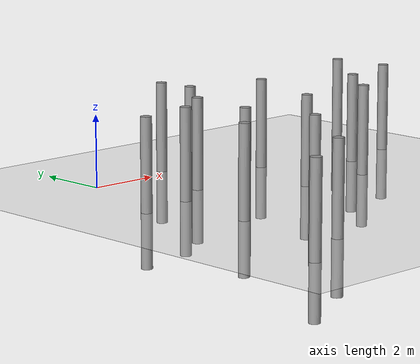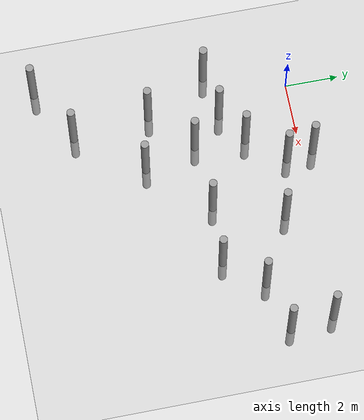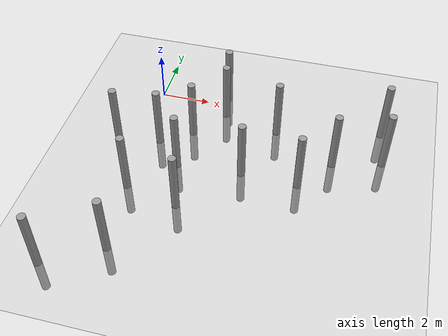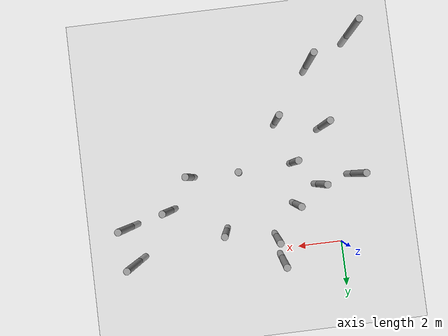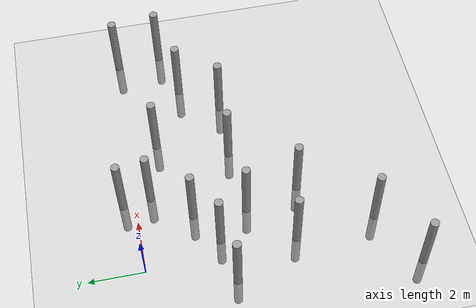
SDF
<sdf version="1.6">
 <world name="default">
  <model name="ground_plane">
   <static>1</static>
   <link name="link">
    <collision name="collision">
     <geometry><plane><normal>0 0 1</normal><size>100 100</size></plane></geometry>
     <surface><friction><ode><mu>100</mu><mu2>50</mu2></ode></friction></surface>
    </collision>
    <visual name="visual">
     <cast_shadows>0</cast_shadows>
     <geometry><plane><normal>0 0 1</normal><size>100 100</size></plane></geometry>
     <material>
      <script><uri>file://media/materials/scripts/gazebo.material</uri><name>Gazebo/Grey</name></script>
     </material>
    </visual>
   </link>
  </model>
  <model name="unit_cylinder_clone">
   <link name="link">
    <inertial>
     <mass>1000</mass>
     <inertia><ixx>145.833</ixx><ixy>0</ixy><ixz>0</ixz><iyy>145.833</iyy><iyz>0</iyz><izz>125</izz></inertia>
    </inertial>
    <visual name="visual">
     <geometry><cylinder><radius>0.15</radius><length>4</length></cylinder></geometry>
     <material>
      <script><name>Gazebo/Grey</name><uri>file://media/materials/scripts/gazebo.material</uri></script>
      <shader type="pixel"><normal_map>__default__</normal_map></shader>
      <ambient>0.3 0.3 0.3 1</ambient>
      <diffuse>0.7 0.7 0.7 1</diffuse>
      <specular>0.01 0.01 0.01 1</specular>
      <emissive>0 0 0 1</emissive>
     </material>
    </visual>
    <collision name="collision">
     <geometry><cylinder><radius>0.15</radius><length>4</length></cylinder></geometry>
     <surface>
      <friction>
       <ode><mu>1</mu><mu2>1</mu2><fdir1>0 0 0</fdir1><slip1>0</slip1><slip2>0</slip2></ode>
       <torsional>
        <coefficient>1</coefficient>
        <patch_radius>0</patch_radius>
        <surface_radius>0</surface_radius>
        <use_patch_radius>1</use_patch_radius>
        <ode><slip>0</slip></ode>
       </torsional>
      </friction>
      <bounce><restitution_coefficient>0</restitution_coefficient><threshold>1e+06</threshold></bounce>
      <contact>
       <collide_without_contact>0</collide_without_contact>
       <collide_without_contact_bitmask>1</collide_without_contact_bitmask>
       <collide_bitmask>1</collide_bitmask>
       <ode>
        <soft_cfm>0</soft_cfm>
        <soft_erp>0.2</soft_erp>
        <kp>1e+13</kp>
        <kd>1</kd>
        <max_vel>0.01</max_vel>
        <min_depth>0</min_depth>
       </ode>
       <bullet>
        <split_impulse>1</split_impulse>
        <split_impulse_penetration_threshold>-0.01</split_impulse_penetration_threshold>
        <soft_cfm>0</soft_cfm>
        <soft_erp>0.2</soft_erp>
        <kp>1e+13</kp>
        <kd>1</kd>
       </bullet>
      </contact>
     </surface>
    </collision>
   </link>
   <static>0</static>
   <pose>2.79096 0.434709 0.5 0 -0 0</pose>
  </model>
  <model name="unit_cylinder_clone_26">
   <link name="link">
    <inertial>
     <mass>1000</mass>
     <inertia><ixx>145.833</ixx><ixy>0</ixy><ixz>0</ixz><iyy>145.833</iyy><iyz>0</iyz><izz>125</izz></inertia>
    </inertial>
    <visual name="visual">
     <geometry><cylinder><radius>0.15</radius><length>4</length></cylinder></geometry>
     <material>
      <script><name>Gazebo/Grey</name><uri>file://media/materials/scripts/gazebo.material</uri></script>
      <shader type="pixel"><normal_map>__default__</normal_map></shader>
      <ambient>0.3 0.3 0.3 1</ambient>
      <diffuse>0.7 0.7 0.7 1</diffuse>
      <specular>0.01 0.01 0.01 1</specular>
      <emissive>0 0 0 1</emissive>
     </material>
    </visual>
    <collision name="collision">
     <geometry><cylinder><radius>0.15</radius><length>4</length></cylinder></geometry>
     <surface>
      <friction>
       <ode><mu>1</mu><mu2>1</mu2><fdir1>0 0 0</fdir1><slip1>0</slip1><slip2>0</slip2></ode>
       <torsional>
        <coefficient>1</coefficient>
        <patch_radius>0</patch_radius>
        <surface_radius>0</surface_radius>
        <use_patch_radius>1</use_patch_radius>
        <ode><slip>0</slip></ode>
       </torsional>
      </friction>
      <bounce><restitution_coefficient>0</restitution_coefficient><threshold>1e+06</threshold></bounce>
      <contact>
       <collide_without_contact>0</collide_without_contact>
       <collide_without_contact_bitmask>1</collide_without_contact_bitmask>
       <collide_bitmask>1</collide_bitmask>
       <ode>
        <soft_cfm>0</soft_cfm>
        <soft_erp>0.2</soft_erp>
        <kp>1e+13</kp>
        <kd>1</kd>
        <max_vel>0.01</max_vel>
        <min_depth>0</min_depth>
       </ode>
       <bullet>
        <split_impulse>1</split_impulse>
        <split_impulse_penetration_threshold>-0.01</split_impulse_penetration_threshold>
        <soft_cfm>0</soft_cfm>
        <soft_erp>0.2</soft_erp>
        <kp>1e+13</kp>
        <kd>1</kd>
       </bullet>
      </contact>
     </surface>
    </collision>
   </link>
   <static>0</static>
   <pose>2.93394 -0.57405 0.5 0 -0 0</pose>
  </model>
  <model name="unit_cylinder_clone_27">
   <link name="link">
    <inertial>
     <mass>1000</mass>
     <inertia><ixx>145.833</ixx><ixy>0</ixy><ixz>0</ixz><iyy>145.833</iyy><iyz>0</iyz><izz>125</izz></inertia>
    </inertial>
    <visual name="visual">
     <geometry><cylinder><radius>0.15</radius><length>4</length></cylinder></geometry>
     <material>
      <script><name>Gazebo/Grey</name><uri>file://media/materials/scripts/gazebo.material</uri></script>
      <shader type="pixel"><normal_map>__default__</normal_map></shader>
      <ambient>0.3 0.3 0.3 1</ambient>
      <diffuse>0.7 0.7 0.7 1</diffuse>
      <specular>0.01 0.01 0.01 1</specular>
      <emissive>0 0 0 1</emissive>
     </material>
    </visual>
    <collision name="collision">
     <geometry><cylinder><radius>0.15</radius><length>4</length></cylinder></geometry>
     <surface>
      <friction>
       <ode><mu>1</mu><mu2>1</mu2><fdir1>0 0 0</fdir1><slip1>0</slip1><slip2>0</slip2></ode>
       <torsional>
        <coefficient>1</coefficient>
        <patch_radius>0</patch_radius>
        <surface_radius>0</surface_radius>
        <use_patch_radius>1</use_patch_radius>
        <ode><slip>0</slip></ode>
       </torsional>
      </friction>
      <bounce><restitution_coefficient>0</restitution_coefficient><threshold>1e+06</threshold></bounce>
      <contact>
       <collide_without_contact>0</collide_without_contact>
       <collide_without_contact_bitmask>1</collide_without_contact_bitmask>
       <collide_bitmask>1</collide_bitmask>
       <ode>
        <soft_cfm>0</soft_cfm>
        <soft_erp>0.2</soft_erp>
        <kp>1e+13</kp>
        <kd>1</kd>
        <max_vel>0.01</max_vel>
        <min_depth>0</min_depth>
       </ode>
       <bullet>
        <split_impulse>1</split_impulse>
        <split_impulse_penetration_threshold>-0.01</split_impulse_penetration_threshold>
        <soft_cfm>0</soft_cfm>
        <soft_erp>0.2</soft_erp>
        <kp>1e+13</kp>
        <kd>1</kd>
       </bullet>
      </contact>
     </surface>
    </collision>
   </link>
   <static>0</static>
   <pose>1.88864 -1.95959 0.5 0 -0 0</pose>
  </model>
  <model name="unit_cylinder_clone_31">
   <link name="link">
    <inertial>
     <mass>1000</mass>
     <inertia><ixx>145.833</ixx><ixy>0</ixy><ixz>0</ixz><iyy>145.833</iyy><iyz>0</iyz><izz>125</izz></inertia>
    </inertial>
    <visual name="visual">
     <geometry><cylinder><radius>0.15</radius><length>4</length></cylinder></geometry>
     <material>
      <script><name>Gazebo/Grey</name><uri>file://media/materials/scripts/gazebo.material</uri></script>
      <shader type="pixel"><normal_map>__default__</normal_map></shader>
      <ambient>0.3 0.3 0.3 1</ambient>
      <diffuse>0.7 0.7 0.7 1</diffuse>
      <specular>0.01 0.01 0.01 1</specular>
      <emissive>0 0 0 1</emissive>
     </material>
    </visual>
    <collision name="collision">
     <geometry><cylinder><radius>0.15</radius><length>4</length></cylinder></geometry>
     <surface>
      <friction>
       <ode><mu>1</mu><mu2>1</mu2><fdir1>0 0 0</fdir1><slip1>0</slip1><slip2>0</slip2></ode>
       <torsional>
        <coefficient>1</coefficient>
        <patch_radius>0</patch_radius>
        <surface_radius>0</surface_radius>
        <use_patch_radius>1</use_patch_radius>
        <ode><slip>0</slip></ode>
       </torsional>
      </friction>
      <bounce><restitution_coefficient>0</restitution_coefficient><threshold>1e+06</threshold></bounce>
      <contact>
       <collide_without_contact>0</collide_without_contact>
       <collide_without_contact_bitmask>1</collide_without_contact_bitmask>
       <collide_bitmask>1</collide_bitmask>
       <ode>
        <soft_cfm>0</soft_cfm>
        <soft_erp>0.2</soft_erp>
        <kp>1e+13</kp>
        <kd>1</kd>
        <max_vel>0.01</max_vel>
        <min_depth>0</min_depth>
       </ode>
       <bullet>
        <split_impulse>1</split_impulse>
        <split_impulse_penetration_threshold>-0.01</split_impulse_penetration_threshold>
        <soft_cfm>0</soft_cfm>
        <soft_erp>0.2</soft_erp>
        <kp>1e+13</kp>
        <kd>1</kd>
       </bullet>
      </contact>
     </surface>
    </collision>
   </link>
   <static>0</static>
   <pose>5.17996 -1.11609 0.5 0 -0 0</pose>
  </model>
  <model name="unit_cylinder_clone_32">
   <link name="link">
    <inertial>
     <mass>1000</mass>
     <inertia><ixx>145.833</ixx><ixy>0</ixy><ixz>0</ixz><iyy>145.833</iyy><iyz>0</iyz><izz>125</izz></inertia>
    </inertial>
    <visual name="visual">
     <geometry><cylinder><radius>0.15</radius><length>4</length></cylinder></geometry>
     <material>
      <script><name>Gazebo/Grey</name><uri>file://media/materials/scripts/gazebo.material</uri></script>
      <shader type="pixel"><normal_map>__default__</normal_map></shader>
      <ambient>0.3 0.3 0.3 1</ambient>
      <diffuse>0.7 0.7 0.7 1</diffuse>
      <specular>0.01 0.01 0.01 1</specular>
      <emissive>0 0 0 1</emissive>
     </material>
    </visual>
    <collision name="collision">
     <geometry><cylinder><radius>0.15</radius><length>4</length></cylinder></geometry>
     <surface>
      <friction>
       <ode><mu>1</mu><mu2>1</mu2><fdir1>0 0 0</fdir1><slip1>0</slip1><slip2>0</slip2></ode>
       <torsional>
        <coefficient>1</coefficient>
        <patch_radius>0</patch_radius>
        <surface_radius>0</surface_radius>
        <use_patch_radius>1</use_patch_radius>
        <ode><slip>0</slip></ode>
       </torsional>
      </friction>
      <bounce><restitution_coefficient>0</restitution_coefficient><threshold>1e+06</threshold></bounce>
      <contact>
       <collide_without_contact>0</collide_without_contact>
       <collide_without_contact_bitmask>1</collide_without_contact_bitmask>
       <collide_bitmask>1</collide_bitmask>
       <ode>
        <soft_cfm>0</soft_cfm>
        <soft_erp>0.2</soft_erp>
        <kp>1e+13</kp>
        <kd>1</kd>
        <max_vel>0.01</max_vel>
        <min_depth>0</min_depth>
       </ode>
       <bullet>
        <split_impulse>1</split_impulse>
        <split_impulse_penetration_threshold>-0.01</split_impulse_penetration_threshold>
        <soft_cfm>0</soft_cfm>
        <soft_erp>0.2</soft_erp>
        <kp>1e+13</kp>
        <kd>1</kd>
       </bullet>
      </contact>
     </surface>
    </collision>
   </link>
   <static>0</static>
   <pose>7.61978 -2.35238 0.5 0 -0 0</pose>
  </model>
  <model name="unit_cylinder_clone_33">
   <link name="link">
    <inertial>
     <mass>1000</mass>
     <inertia><ixx>145.833</ixx><ixy>0</ixy><ixz>0</ixz><iyy>145.833</iyy><iyz>0</iyz><izz>125</izz></inertia>
    </inertial>
    <visual name="visual">
     <geometry><cylinder><radius>0.15</radius><length>4</length></cylinder></geometry>
     <material>
      <script><name>Gazebo/Grey</name><uri>file://media/materials/scripts/gazebo.material</uri></script>
      <shader type="pixel"><normal_map>__default__</normal_map></shader>
      <ambient>0.3 0.3 0.3 1</ambient>
      <diffuse>0.7 0.7 0.7 1</diffuse>
      <specular>0.01 0.01 0.01 1</specular>
      <emissive>0 0 0 1</emissive>
     </material>
    </visual>
    <collision name="collision">
     <geometry><cylinder><radius>0.15</radius><length>4</length></cylinder></geometry>
     <surface>
      <friction>
       <ode><mu>1</mu><mu2>1</mu2><fdir1>0 0 0</fdir1><slip1>0</slip1><slip2>0</slip2></ode>
       <torsional>
        <coefficient>1</coefficient>
        <patch_radius>0</patch_radius>
        <surface_radius>0</surface_radius>
        <use_patch_radius>1</use_patch_radius>
        <ode><slip>0</slip></ode>
       </torsional>
      </friction>
      <bounce><restitution_coefficient>0</restitution_coefficient><threshold>1e+06</threshold></bounce>
      <contact>
       <collide_without_contact>0</collide_without_contact>
       <collide_without_contact_bitmask>1</collide_without_contact_bitmask>
       <collide_bitmask>1</collide_bitmask>
       <ode>
        <soft_cfm>0</soft_cfm>
        <soft_erp>0.2</soft_erp>
        <kp>1e+13</kp>
        <kd>1</kd>
        <max_vel>0.01</max_vel>
        <min_depth>0</min_depth>
       </ode>
       <bullet>
        <split_impulse>1</split_impulse>
        <split_impulse_penetration_threshold>-0.01</split_impulse_penetration_threshold>
        <soft_cfm>0</soft_cfm>
        <soft_erp>0.2</soft_erp>
        <kp>1e+13</kp>
        <kd>1</kd>
       </bullet>
      </contact>
     </surface>
    </collision>
   </link>
   <static>0</static>
   <pose>9.32443 -0.21102 0.5 0 -0 0</pose>
  </model>
  <model name="unit_cylinder_clone_34">
   <link name="link">
    <inertial>
     <mass>1000</mass>
     <inertia><ixx>145.833</ixx><ixy>0</ixy><ixz>0</ixz><iyy>145.833</iyy><iyz>0</iyz><izz>125</izz></inertia>
    </inertial>
    <visual name="visual">
     <geometry><cylinder><radius>0.15</radius><length>4</length></cylinder></geometry>
     <material>
      <script><name>Gazebo/Grey</name><uri>file://media/materials/scripts/gazebo.material</uri></script>
      <shader type="pixel"><normal_map>__default__</normal_map></shader>
      <ambient>0.3 0.3 0.3 1</ambient>
      <diffuse>0.7 0.7 0.7 1</diffuse>
      <specular>0.01 0.01 0.01 1</specular>
      <emissive>0 0 0 1</emissive>
     </material>
    </visual>
    <collision name="collision">
     <geometry><cylinder><radius>0.15</radius><length>4</length></cylinder></geometry>
     <surface>
      <friction>
       <ode><mu>1</mu><mu2>1</mu2><fdir1>0 0 0</fdir1><slip1>0</slip1><slip2>0</slip2></ode>
       <torsional>
        <coefficient>1</coefficient>
        <patch_radius>0</patch_radius>
        <surface_radius>0</surface_radius>
        <use_patch_radius>1</use_patch_radius>
        <ode><slip>0</slip></ode>
       </torsional>
      </friction>
      <bounce><restitution_coefficient>0</restitution_coefficient><threshold>1e+06</threshold></bounce>
      <contact>
       <collide_without_contact>0</collide_without_contact>
       <collide_without_contact_bitmask>1</collide_without_contact_bitmask>
       <collide_bitmask>1</collide_bitmask>
       <ode>
        <soft_cfm>0</soft_cfm>
        <soft_erp>0.2</soft_erp>
        <kp>1e+13</kp>
        <kd>1</kd>
        <max_vel>0.01</max_vel>
        <min_depth>0</min_depth>
       </ode>
       <bullet>
        <split_impulse>1</split_impulse>
        <split_impulse_penetration_threshold>-0.01</split_impulse_penetration_threshold>
        <soft_cfm>0</soft_cfm>
        <soft_erp>0.2</soft_erp>
        <kp>1e+13</kp>
        <kd>1</kd>
       </bullet>
      </contact>
     </surface>
    </collision>
   </link>
   <static>0</static>
   <pose>9.51376 -1.83265 0.5 0 -0 0</pose>
  </model>
  <model name="unit_cylinder_clone_36">
   <link name="link">
    <inertial>
     <mass>1000</mass>
     <inertia><ixx>145.833</ixx><ixy>0</ixy><ixz>0</ixz><iyy>145.833</iyy><iyz>0</iyz><izz>125</izz></inertia>
    </inertial>
    <visual name="visual">
     <geometry><cylinder><radius>0.15</radius><length>4</length></cylinder></geometry>
     <material>
      <script><name>Gazebo/Grey</name><uri>file://media/materials/scripts/gazebo.material</uri></script>
      <shader type="pixel"><normal_map>__default__</normal_map></shader>
      <ambient>0.3 0.3 0.3 1</ambient>
      <diffuse>0.7 0.7 0.7 1</diffuse>
      <specular>0.01 0.01 0.01 1</specular>
      <emissive>0 0 0 1</emissive>
     </material>
    </visual>
    <collision name="collision">
     <geometry><cylinder><radius>0.15</radius><length>4</length></cylinder></geometry>
     <surface>
      <friction>
       <ode><mu>1</mu><mu2>1</mu2><fdir1>0 0 0</fdir1><slip1>0</slip1><slip2>0</slip2></ode>
       <torsional>
        <coefficient>1</coefficient>
        <patch_radius>0</patch_radius>
        <surface_radius>0</surface_radius>
        <use_patch_radius>1</use_patch_radius>
        <ode><slip>0</slip></ode>
       </torsional>
      </friction>
      <bounce><restitution_coefficient>0</restitution_coefficient><threshold>1e+06</threshold></bounce>
      <contact>
       <collide_without_contact>0</collide_without_contact>
       <collide_without_contact_bitmask>1</collide_without_contact_bitmask>
       <collide_bitmask>1</collide_bitmask>
       <ode>
        <soft_cfm>0</soft_cfm>
        <soft_erp>0.2</soft_erp>
        <kp>1e+13</kp>
        <kd>1</kd>
        <max_vel>0.01</max_vel>
        <min_depth>0</min_depth>
       </ode>
       <bullet>
        <split_impulse>1</split_impulse>
        <split_impulse_penetration_threshold>-0.01</split_impulse_penetration_threshold>
        <soft_cfm>0</soft_cfm>
        <soft_erp>0.2</soft_erp>
        <kp>1e+13</kp>
        <kd>1</kd>
       </bullet>
      </contact>
     </surface>
    </collision>
   </link>
   <static>0</static>
   <pose>4.30521 -3.69426 0.5 0 -0 0</pose>
  </model>
  <model name="unit_cylinder_clone_38">
   <link name="link">
    <inertial>
     <mass>1000</mass>
     <inertia><ixx>145.833</ixx><ixy>0</ixy><ixz>0</ixz><iyy>145.833</iyy><iyz>0</iyz><izz>125</izz></inertia>
    </inertial>
    <visual name="visual">
     <geometry><cylinder><radius>0.15</radius><length>4</length></cylinder></geometry>
     <material>
      <script><name>Gazebo/Grey</name><uri>file://media/materials/scripts/gazebo.material</uri></script>
      <shader type="pixel"><normal_map>__default__</normal_map></shader>
      <ambient>0.3 0.3 0.3 1</ambient>
      <diffuse>0.7 0.7 0.7 1</diffuse>
      <specular>0.01 0.01 0.01 1</specular>
      <emissive>0 0 0 1</emissive>
     </material>
    </visual>
    <collision name="collision">
     <geometry><cylinder><radius>0.15</radius><length>4</length></cylinder></geometry>
     <surface>
      <friction>
       <ode><mu>1</mu><mu2>1</mu2><fdir1>0 0 0</fdir1><slip1>0</slip1><slip2>0</slip2></ode>
       <torsional>
        <coefficient>1</coefficient>
        <patch_radius>0</patch_radius>
        <surface_radius>0</surface_radius>
        <use_patch_radius>1</use_patch_radius>
        <ode><slip>0</slip></ode>
       </torsional>
      </friction>
      <bounce><restitution_coefficient>0</restitution_coefficient><threshold>1e+06</threshold></bounce>
      <contact>
       <collide_without_contact>0</collide_without_contact>
       <collide_without_contact_bitmask>1</collide_without_contact_bitmask>
       <collide_bitmask>1</collide_bitmask>
       <ode>
        <soft_cfm>0</soft_cfm>
        <soft_erp>0.2</soft_erp>
        <kp>1e+13</kp>
        <kd>1</kd>
        <max_vel>0.01</max_vel>
        <min_depth>0</min_depth>
       </ode>
       <bullet>
        <split_impulse>1</split_impulse>
        <split_impulse_penetration_threshold>-0.01</split_impulse_penetration_threshold>
        <soft_cfm>0</soft_cfm>
        <soft_erp>0.2</soft_erp>
        <kp>1e+13</kp>
        <kd>1</kd>
       </bullet>
      </contact>
     </surface>
    </collision>
   </link>
   <static>0</static>
   <pose>0.264948 -5.35674 0.5 0 -0 0</pose>
  </model>
  <model name="unit_cylinder_clone_40">
   <link name="link">
    <inertial>
     <mass>1000</mass>
     <inertia><ixx>145.833</ixx><ixy>0</ixy><ixz>0</ixz><iyy>145.833</iyy><iyz>0</iyz><izz>125</izz></inertia>
    </inertial>
    <visual name="visual">
     <geometry><cylinder><radius>0.15</radius><length>4</length></cylinder></geometry>
     <material>
      <script><name>Gazebo/Grey</name><uri>file://media/materials/scripts/gazebo.material</uri></script>
      <shader type="pixel"><normal_map>__default__</normal_map></shader>
      <ambient>0.3 0.3 0.3 1</ambient>
      <diffuse>0.7 0.7 0.7 1</diffuse>
      <specular>0.01 0.01 0.01 1</specular>
      <emissive>0 0 0 1</emissive>
     </material>
    </visual>
    <collision name="collision">
     <geometry><cylinder><radius>0.15</radius><length>4</length></cylinder></geometry>
     <surface>
      <friction>
       <ode><mu>1</mu><mu2>1</mu2><fdir1>0 0 0</fdir1><slip1>0</slip1><slip2>0</slip2></ode>
       <torsional>
        <coefficient>1</coefficient>
        <patch_radius>0</patch_radius>
        <surface_radius>0</surface_radius>
        <use_patch_radius>1</use_patch_radius>
        <ode><slip>0</slip></ode>
       </torsional>
      </friction>
      <bounce><restitution_coefficient>0</restitution_coefficient><threshold>1e+06</threshold></bounce>
      <contact>
       <collide_without_contact>0</collide_without_contact>
       <collide_without_contact_bitmask>1</collide_without_contact_bitmask>
       <collide_bitmask>1</collide_bitmask>
       <ode>
        <soft_cfm>0</soft_cfm>
        <soft_erp>0.2</soft_erp>
        <kp>1e+13</kp>
        <kd>1</kd>
        <max_vel>0.01</max_vel>
        <min_depth>0</min_depth>
       </ode>
       <bullet>
        <split_impulse>1</split_impulse>
        <split_impulse_penetration_threshold>-0.01</split_impulse_penetration_threshold>
        <soft_cfm>0</soft_cfm>
        <soft_erp>0.2</soft_erp>
        <kp>1e+13</kp>
        <kd>1</kd>
       </bullet>
      </contact>
     </surface>
    </collision>
   </link>
   <static>0</static>
   <pose>0.5801 -8.26429 0.5 0 -0 0</pose>
  </model>
  <model name="unit_cylinder_clone_41">
   <link name="link">
    <inertial>
     <mass>1000</mass>
     <inertia><ixx>145.833</ixx><ixy>0</ixy><ixz>0</ixz><iyy>145.833</iyy><iyz>0</iyz><izz>125</izz></inertia>
    </inertial>
    <visual name="visual">
     <geometry><cylinder><radius>0.15</radius><length>4</length></cylinder></geometry>
     <material>
      <script><name>Gazebo/Grey</name><uri>file://media/materials/scripts/gazebo.material</uri></script>
      <shader type="pixel"><normal_map>__default__</normal_map></shader>
      <ambient>0.3 0.3 0.3 1</ambient>
      <diffuse>0.7 0.7 0.7 1</diffuse>
      <specular>0.01 0.01 0.01 1</specular>
      <emissive>0 0 0 1</emissive>
     </material>
    </visual>
    <collision name="collision">
     <geometry><cylinder><radius>0.15</radius><length>4</length></cylinder></geometry>
     <surface>
      <friction>
       <ode><mu>1</mu><mu2>1</mu2><fdir1>0 0 0</fdir1><slip1>0</slip1><slip2>0</slip2></ode>
       <torsional>
        <coefficient>1</coefficient>
        <patch_radius>0</patch_radius>
        <surface_radius>0</surface_radius>
        <use_patch_radius>1</use_patch_radius>
        <ode><slip>0</slip></ode>
       </torsional>
      </friction>
      <bounce><restitution_coefficient>0</restitution_coefficient><threshold>1e+06</threshold></bounce>
      <contact>
       <collide_without_contact>0</collide_without_contact>
       <collide_without_contact_bitmask>1</collide_without_contact_bitmask>
       <collide_bitmask>1</collide_bitmask>
       <ode>
        <soft_cfm>0</soft_cfm>
        <soft_erp>0.2</soft_erp>
        <kp>1e+13</kp>
        <kd>1</kd>
        <max_vel>0.01</max_vel>
        <min_depth>0</min_depth>
       </ode>
       <bullet>
        <split_impulse>1</split_impulse>
        <split_impulse_penetration_threshold>-0.01</split_impulse_penetration_threshold>
        <soft_cfm>0</soft_cfm>
        <soft_erp>0.2</soft_erp>
        <kp>1e+13</kp>
        <kd>1</kd>
       </bullet>
      </contact>
     </surface>
    </collision>
   </link>
   <static>0</static>
   <pose>-1.47469 -9.43813 0.5 0 -0 0</pose>
  </model>
  <model name="unit_cylinder_clone_42">
   <link name="link">
    <inertial>
     <mass>1000</mass>
     <inertia><ixx>145.833</ixx><ixy>0</ixy><ixz>0</ixz><iyy>145.833</iyy><iyz>0</iyz><izz>125</izz></inertia>
    </inertial>
    <visual name="visual">
     <geometry><cylinder><radius>0.15</radius><length>4</length></cylinder></geometry>
     <material>
      <script><name>Gazebo/Grey</name><uri>file://media/materials/scripts/gazebo.material</uri></script>
      <shader type="pixel"><normal_map>__default__</normal_map></shader>
      <ambient>0.3 0.3 0.3 1</ambient>
      <diffuse>0.7 0.7 0.7 1</diffuse>
      <specular>0.01 0.01 0.01 1</specular>
      <emissive>0 0 0 1</emissive>
     </material>
    </visual>
    <collision name="collision">
     <geometry><cylinder><radius>0.15</radius><length>4</length></cylinder></geometry>
     <surface>
      <friction>
       <ode><mu>1</mu><mu2>1</mu2><fdir1>0 0 0</fdir1><slip1>0</slip1><slip2>0</slip2></ode>
       <torsional>
        <coefficient>1</coefficient>
        <patch_radius>0</patch_radius>
        <surface_radius>0</surface_radius>
        <use_patch_radius>1</use_patch_radius>
        <ode><slip>0</slip></ode>
       </torsional>
      </friction>
      <bounce><restitution_coefficient>0</restitution_coefficient><threshold>1e+06</threshold></bounce>
      <contact>
       <collide_without_contact>0</collide_without_contact>
       <collide_without_contact_bitmask>1</collide_without_contact_bitmask>
       <collide_bitmask>1</collide_bitmask>
       <ode>
        <soft_cfm>0</soft_cfm>
        <soft_erp>0.2</soft_erp>
        <kp>1e+13</kp>
        <kd>1</kd>
        <max_vel>0.01</max_vel>
        <min_depth>0</min_depth>
       </ode>
       <bullet>
        <split_impulse>1</split_impulse>
        <split_impulse_penetration_threshold>-0.01</split_impulse_penetration_threshold>
        <soft_cfm>0</soft_cfm>
        <soft_erp>0.2</soft_erp>
        <kp>1e+13</kp>
        <kd>1</kd>
       </bullet>
      </contact>
     </surface>
    </collision>
   </link>
   <static>0</static>
   <pose>2.34071 -5.8384 0.5 0 -0 0</pose>
  </model>
  <model name="unit_cylinder_clone_44">
   <link name="link">
    <inertial>
     <mass>1000</mass>
     <inertia><ixx>145.833</ixx><ixy>0</ixy><ixz>0</ixz><iyy>145.833</iyy><iyz>0</iyz><izz>125</izz></inertia>
    </inertial>
    <visual name="visual">
     <geometry><cylinder><radius>0.15</radius><length>4</length></cylinder></geometry>
     <material>
      <script><name>Gazebo/Grey</name><uri>file://media/materials/scripts/gazebo.material</uri></script>
      <shader type="pixel"><normal_map>__default__</normal_map></shader>
      <ambient>0.3 0.3 0.3 1</ambient>
      <diffuse>0.7 0.7 0.7 1</diffuse>
      <specular>0.01 0.01 0.01 1</specular>
      <emissive>0 0 0 1</emissive>
     </material>
    </visual>
    <collision name="collision">
     <geometry><cylinder><radius>0.15</radius><length>4</length></cylinder></geometry>
     <surface>
      <friction>
       <ode><mu>1</mu><mu2>1</mu2><fdir1>0 0 0</fdir1><slip1>0</slip1><slip2>0</slip2></ode>
       <torsional>
        <coefficient>1</coefficient>
        <patch_radius>0</patch_radius>
        <surface_radius>0</surface_radius>
        <use_patch_radius>1</use_patch_radius>
        <ode><slip>0</slip></ode>
       </torsional>
      </friction>
      <bounce><restitution_coefficient>0</restitution_coefficient><threshold>1e+06</threshold></bounce>
      <contact>
       <collide_without_contact>0</collide_without_contact>
       <collide_without_contact_bitmask>1</collide_without_contact_bitmask>
       <collide_bitmask>1</collide_bitmask>
       <ode>
        <soft_cfm>0</soft_cfm>
        <soft_erp>0.2</soft_erp>
        <kp>1e+13</kp>
        <kd>1</kd>
        <max_vel>0.01</max_vel>
        <min_depth>0</min_depth>
       </ode>
       <bullet>
        <split_impulse>1</split_impulse>
        <split_impulse_penetration_threshold>-0.01</split_impulse_penetration_threshold>
        <soft_cfm>0</soft_cfm>
        <soft_erp>0.2</soft_erp>
        <kp>1e+13</kp>
        <kd>1</kd>
       </bullet>
      </contact>
     </surface>
    </collision>
   </link>
   <static>0</static>
   <pose>0.714202 -2.73587 0.5 0 -0 0</pose>
  </model>
  <model name="unit_cylinder_clone_45">
   <link name="link">
    <inertial>
     <mass>1000</mass>
     <inertia><ixx>145.833</ixx><ixy>0</ixy><ixz>0</ixz><iyy>145.833</iyy><iyz>0</iyz><izz>125</izz></inertia>
    </inertial>
    <visual name="visual">
     <geometry><cylinder><radius>0.15</radius><length>4</length></cylinder></geometry>
     <material>
      <script><name>Gazebo/Grey</name><uri>file://media/materials/scripts/gazebo.material</uri></script>
      <shader type="pixel"><normal_map>__default__</normal_map></shader>
      <ambient>0.3 0.3 0.3 1</ambient>
      <diffuse>0.7 0.7 0.7 1</diffuse>
      <specular>0.01 0.01 0.01 1</specular>
      <emissive>0 0 0 1</emissive>
     </material>
    </visual>
    <collision name="collision">
     <geometry><cylinder><radius>0.15</radius><length>4</length></cylinder></geometry>
     <surface>
      <friction>
       <ode><mu>1</mu><mu2>1</mu2><fdir1>0 0 0</fdir1><slip1>0</slip1><slip2>0</slip2></ode>
       <torsional>
        <coefficient>1</coefficient>
        <patch_radius>0</patch_radius>
        <surface_radius>0</surface_radius>
        <use_patch_radius>1</use_patch_radius>
        <ode><slip>0</slip></ode>
       </torsional>
      </friction>
      <bounce><restitution_coefficient>0</restitution_coefficient><threshold>1e+06</threshold></bounce>
      <contact>
       <collide_without_contact>0</collide_without_contact>
       <collide_without_contact_bitmask>1</collide_without_contact_bitmask>
       <collide_bitmask>1</collide_bitmask>
       <ode>
        <soft_cfm>0</soft_cfm>
        <soft_erp>0.2</soft_erp>
        <kp>1e+13</kp>
        <kd>1</kd>
        <max_vel>0.01</max_vel>
        <min_depth>0</min_depth>
       </ode>
       <bullet>
        <split_impulse>1</split_impulse>
        <split_impulse_penetration_threshold>-0.01</split_impulse_penetration_threshold>
        <soft_cfm>0</soft_cfm>
        <soft_erp>0.2</soft_erp>
        <kp>1e+13</kp>
        <kd>1</kd>
       </bullet>
      </contact>
     </surface>
    </collision>
   </link>
   <static>0</static>
   <pose>1.78335 -3.86879 0.5 0 -0 0</pose>
  </model>
  <model name="unit_cylinder_clone_8_clone_0">
   <link name="link">
    <inertial>
     <mass>1000</mass>
     <inertia><ixx>145.833</ixx><ixy>0</ixy><ixz>0</ixz><iyy>145.833</iyy><iyz>0</iyz><izz>125</izz></inertia>
    </inertial>
    <visual name="visual">
     <geometry><cylinder><radius>0.15</radius><length>4</length></cylinder></geometry>
     <material>
      <script><name>Gazebo/Grey</name><uri>file://media/materials/scripts/gazebo.material</uri></script>
      <shader type="pixel"><normal_map>__default__</normal_map></shader>
      <ambient>0.3 0.3 0.3 1</ambient>
      <diffuse>0.7 0.7 0.7 1</diffuse>
      <specular>0.01 0.01 0.01 1</specular>
      <emissive>0 0 0 1</emissive>
     </material>
    </visual>
    <collision name="collision">
     <geometry><cylinder><radius>0.15</radius><length>4</length></cylinder></geometry>
     <surface>
      <friction>
       <ode><mu>1</mu><mu2>1</mu2><fdir1>0 0 0</fdir1><slip1>0</slip1><slip2>0</slip2></ode>
       <torsional>
        <coefficient>1</coefficient>
        <patch_radius>0</patch_radius>
        <surface_radius>0</surface_radius>
        <use_patch_radius>1</use_patch_radius>
        <ode><slip>0</slip></ode>
       </torsional>
      </friction>
      <bounce><restitution_coefficient>0</restitution_coefficient><threshold>1e+06</threshold></bounce>
      <contact>
       <collide_without_contact>0</collide_without_contact>
       <collide_without_contact_bitmask>1</collide_without_contact_bitmask>
       <collide_bitmask>1</collide_bitmask>
       <ode>
        <soft_cfm>0</soft_cfm>
        <soft_erp>0.2</soft_erp>
        <kp>1e+13</kp>
        <kd>1</kd>
        <max_vel>0.01</max_vel>
        <min_depth>0</min_depth>
       </ode>
       <bullet>
        <split_impulse>1</split_impulse>
        <split_impulse_penetration_threshold>-0.01</split_impulse_penetration_threshold>
        <soft_cfm>0</soft_cfm>
        <soft_erp>0.2</soft_erp>
        <kp>1e+13</kp>
        <kd>1</kd>
       </bullet>
      </contact>
     </surface>
    </collision>
   </link>
   <static>0</static>
   <pose>-0.938924 -3.02077 0.5 0 -0 0</pose>
  </model>
  <model name="unit_cylinder_clone_0_clone">
   <link name="link">
    <inertial>
     <mass>1000</mass>
     <inertia><ixx>145.833</ixx><ixy>0</ixy><ixz>0</ixz><iyy>145.833</iyy><iyz>0</iyz><izz>125</izz></inertia>
    </inertial>
    <visual name="visual">
     <geometry><cylinder><radius>0.15</radius><length>4</length></cylinder></geometry>
     <material>
      <script><name>Gazebo/Grey</name><uri>file://media/materials/scripts/gazebo.material</uri></script>
      <shader type="pixel"><normal_map>__default__</normal_map></shader>
      <ambient>0.3 0.3 0.3 1</ambient>
      <diffuse>0.7 0.7 0.7 1</diffuse>
      <specular>0.01 0.01 0.01 1</specular>
      <emissive>0 0 0 1</emissive>
     </material>
    </visual>
    <collision name="collision">
     <geometry><cylinder><radius>0.15</radius><length>4</length></cylinder></geometry>
     <surface>
      <friction>
       <ode><mu>1</mu><mu2>1</mu2><fdir1>0 0 0</fdir1><slip1>0</slip1><slip2>0</slip2></ode>
       <torsional>
        <coefficient>1</coefficient>
        <patch_radius>0</patch_radius>
        <surface_radius>0</surface_radius>
        <use_patch_radius>1</use_patch_radius>
        <ode><slip>0</slip></ode>
       </torsional>
      </friction>
      <bounce><restitution_coefficient>0</restitution_coefficient><threshold>1e+06</threshold></bounce>
      <contact>
       <collide_without_contact>0</collide_without_contact>
       <collide_without_contact_bitmask>1</collide_without_contact_bitmask>
       <collide_bitmask>1</collide_bitmask>
       <ode>
        <soft_cfm>0</soft_cfm>
        <soft_erp>0.2</soft_erp>
        <kp>1e+13</kp>
        <kd>1</kd>
        <max_vel>0.01</max_vel>
        <min_depth>0</min_depth>
       </ode>
       <bullet>
        <split_impulse>1</split_impulse>
        <split_impulse_penetration_threshold>-0.01</split_impulse_penetration_threshold>
        <soft_cfm>0</soft_cfm>
        <soft_erp>0.2</soft_erp>
        <kp>1e+13</kp>
        <kd>1</kd>
       </bullet>
      </contact>
     </surface>
    </collision>
   </link>
   <static>0</static>
   <pose>6.50513 -3.75966 0.5 0 -0 0</pose>
  </model>
 </world>
</sdf>
